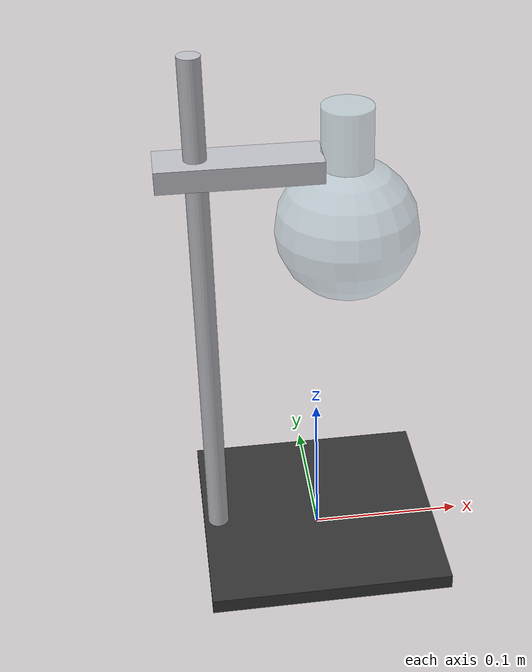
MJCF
<?xml version="1.0" encoding="utf-8"?>
<mujoco model="round_bottom_flask_stand">
  <compiler angle="radian" autolimits="true"/>
  <default>
    <default class="body"><geom contype="1" conaffinity="1"/></default>
  </default>
  <worldbody>
    <body name="base">
      <geom type="box" size="0.08 0.08 0.005" pos="0 0 0.005" rgba="0.2 0.2 0.2 1" class="body"/>
      <geom type="cylinder" size="0.007 0.17" pos="-0.07 0 0.18" rgba="0.75 0.75 0.78 1" class="body"/>
      <geom type="box" size="0.05 0.015 0.007" pos="-0.045 0 0.28" rgba="0.75 0.75 0.78 1" class="body"/>
      <body name="flask" pos="0.02 0 0.235">
        <joint name="flask_joint" type="slide" axis="0 0 1" range="0 0.08" damping="1.0" frictionloss="0.3"/>
        <geom name="flask_bulb" type="sphere" size="0.045" pos="0 0 0" rgba="0.7 0.85 0.9 0.4" class="body"/>
        <geom name="flask_neck" type="cylinder" size="0.016 0.02" pos="0 0 0.06" rgba="0.7 0.85 0.9 0.4" class="body"/>
        <site name="grasp_site" pos="0 0 0.06" size="0.005" rgba="1 0 0 1" group="4"/>
      </body>
    </body>
  </worldbody>
</mujoco>
